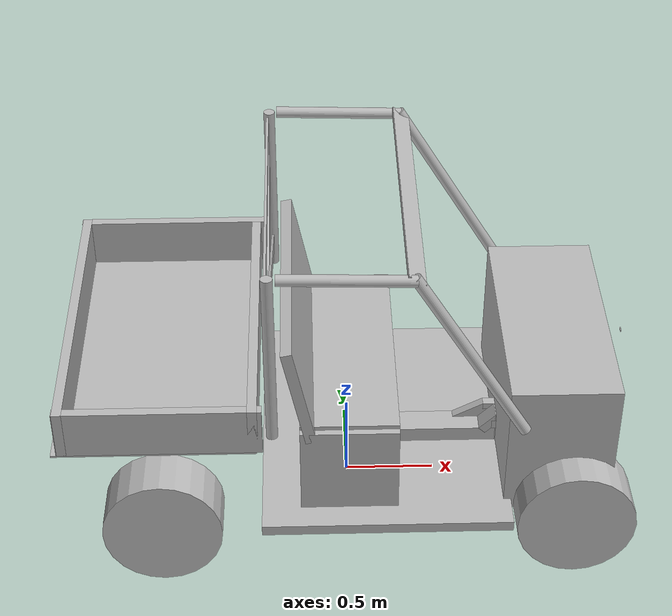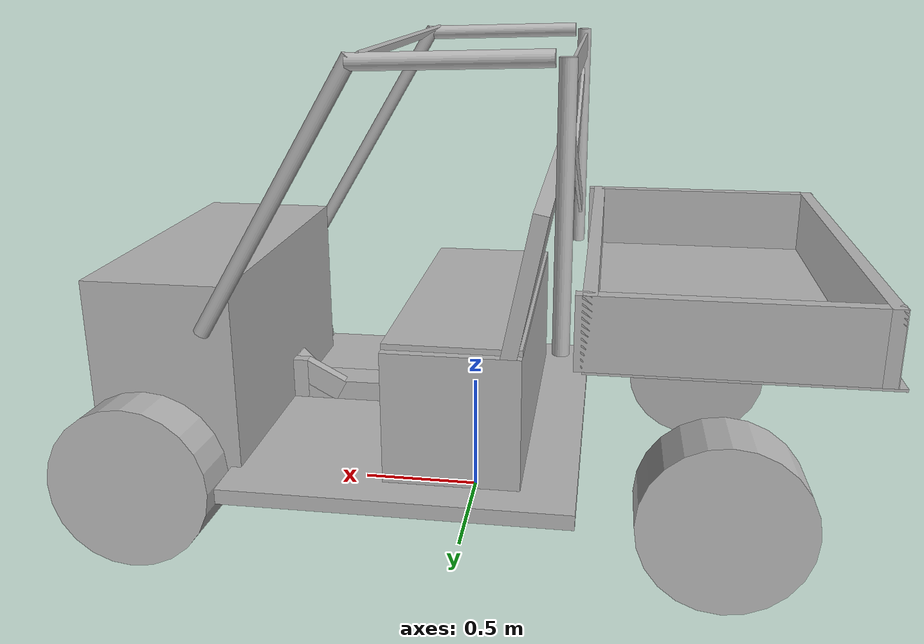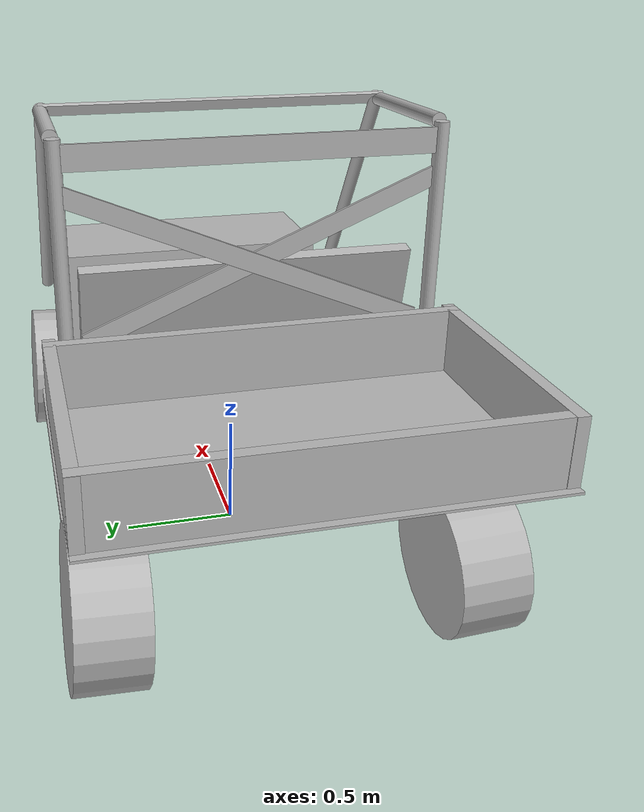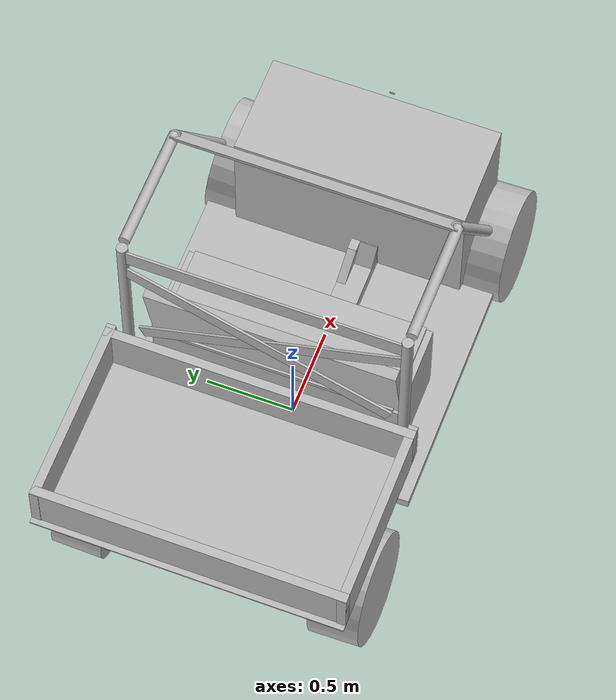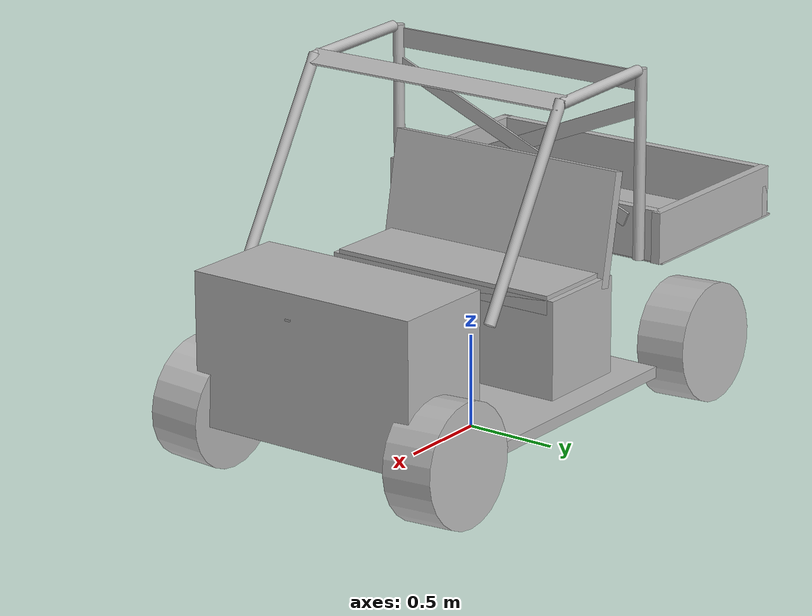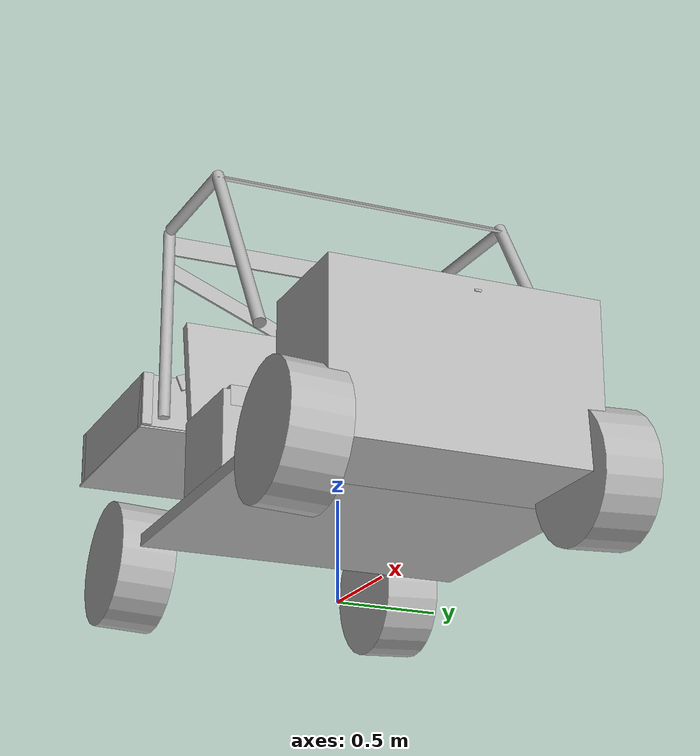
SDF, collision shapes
<?xml version="1.0"?>
<sdf version='1.6'>
  <model name='my_rover'>

    <include>
      <uri>model://rover</uri>
    </include>

	<include>
      <uri>model://intel_r200</uri>
      <pose>1.5 0 1 0 0 0</pose>
    </include>
    <joint name="depth_camera_joint" type="revolute">
      <child>intel_r200::r200_link</child>
      <parent>rover::base_link</parent>
      <axis>
        <xyz>0 0 1</xyz>
        <limit>
          <upper>0</upper>
          <lower>0</lower>
        </limit>
      </axis>
    </joint>

  </model>
</sdf>
